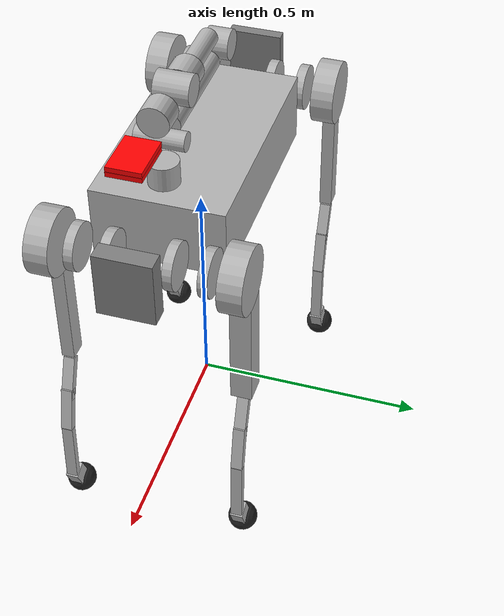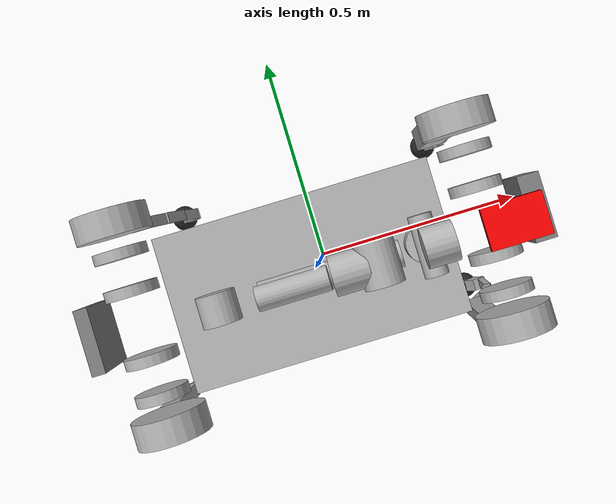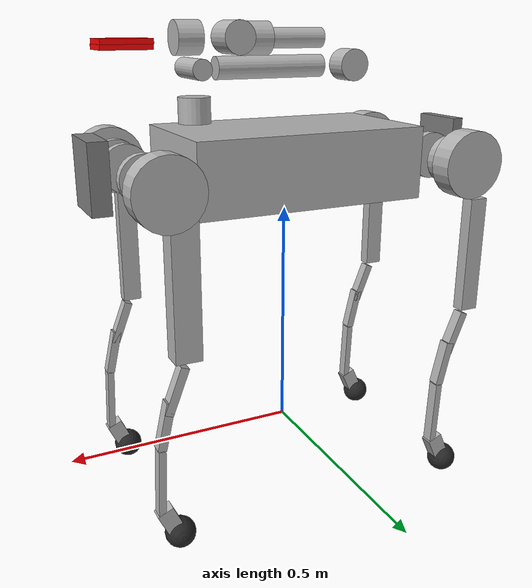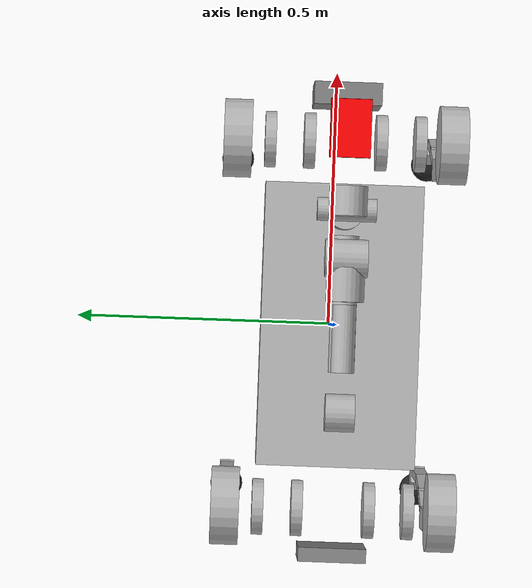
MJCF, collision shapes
<mujoco model="b2z1">
  <compiler angle="radian" meshdir="assets" autolimits="true"/>
  <option impratio="10" />
  <option noslip_iterations="5"> </option>

  <default>
    <default class="b2z1">
      <geom type="mesh"/>
      <joint damping="1" armature="0.1"/>
      <default class="visual">
        <geom contype="0" conaffinity="0" group="2"/>
      </default>
      <default class="collision">
        <geom group="3" mass="0" density="0"/>
      </default>
      <site size="0.001" rgba="0.5 0.5 0.5 0.3" group="4"/>
    </default>
  </default>

  <asset>
    <mesh name="base_link" file="base_link.obj"/>
    <mesh name="logo_left" file="logo_left.obj"/>
    <mesh name="logo_right" file="logo_right.obj"/>
    <mesh name="f_dc_link" file="f_dc_link.obj"/>
    <mesh name="r_dc_link" file="r_dc_link.obj"/>
    <mesh name="fake_imu_link" file="fake_imu_link.STL"/>
    <mesh name="fake_head_Link" file="fake_head_Link.STL"/>
    <mesh name="fake_tail_link" file="fake_tail_link.STL"/>
    <mesh name="FL_hip" file="FL_hip.obj"/>
    <mesh name="FL_thigh" file="FL_thigh.obj"/>
    <mesh name="FL_thigh_protect" file="FL_thigh_protect.obj"/>
    <mesh name="FL_calf" file="FL_calf.obj"/>
    <mesh name="FL_foot" file="FL_foot.obj"/>
    <mesh name="FR_hip" file="FR_hip.obj"/>
    <mesh name="FR_thigh" file="FR_thigh.obj"/>
    <mesh name="FR_thigh_protect" file="FR_thigh_protect.obj"/>
    <mesh name="FR_calf" file="FR_calf.obj"/>
    <mesh name="FR_foot" file="FR_foot.obj"/>
    <mesh name="RL_hip" file="RL_hip.obj"/>
    <mesh name="RL_thigh" file="RL_thigh.obj"/>
    <mesh name="RL_thigh_protect" file="RL_thigh_protect.obj"/>
    <mesh name="RL_calf" file="RL_calf.obj"/>
    <mesh name="RL_foot" file="RL_foot.obj"/>
    <mesh name="RR_hip" file="RR_hip.obj"/>
    <mesh name="RR_thigh" file="RR_thigh.obj"/>
    <mesh name="RR_thigh_protect" file="RR_thigh_protect.obj"/>
    <mesh name="RR_calf" file="RR_calf.obj"/>
    <mesh name="RR_foot" file="RR_foot.obj"/>
    <mesh name="f_oc_link" file="f_oc_link.obj"/>
    <mesh name="r_oc_link" file="r_oc_link.obj"/>

    <mesh name="z1_GripperMover" file="z1_GripperMover.STL" />
    <mesh name="z1_GripperStator" file="z1_GripperStator.STL" />
    <mesh name="z1_Link00" file="z1_Link00.STL"/>
    <mesh name="z1_Link01" file="z1_Link01.STL"/>
    <mesh name="z1_Link02" file="z1_Link02.STL"/>
    <mesh name="z1_Link03" file="z1_Link03.STL"/>
    <mesh name="z1_Link04" file="z1_Link04.STL"/>
    <mesh name="z1_Link05" file="z1_Link05.STL"/>
    <mesh name="z1_Link06" file="z1_Link06.STL"/>
  </asset>
  <worldbody>
    <body name="base_link" pos="0.0 0 0.6" childclass="b2z1">
      <inertial pos="0.000458 0.005261 0.000665" mass="35.86"
                diaginertia="0.27466 1.0618 1.1825" fullinertia="0.27466 1.0618 1.1825 -0.000622 0.00315 -0.00139"/>
      <joint name="floating_base_joint" type="free"/>
      <geom type="mesh" contype="0" conaffinity="0" group="1" density="0" rgba="0.7 0.7 0.7 1" mesh="base_link"/>
      <geom size="0.25 0.14 0.075" type="box" rgba="0.7 0.7 0.7 1" class="collision"/>
      <geom type="mesh" contype="0" conaffinity="0" group="1" density="0" rgba="1 1 1 1" mesh="logo_left"/>
      <geom type="mesh" contype="0" conaffinity="0" group="1" density="0" rgba="1 1 1 1" mesh="logo_right"/>
      <body name="f_dc_link" pos="0.41251 0.024997 0.04765" euler="-2.3562 0 -1.5708">
        <inertial pos="0 0 0" mass="4.19E-15" diaginertia="1.68E-27 1.68E-27 1.68E-27"/>
      </body>
      <body name="r_dc_link" pos="-0.4081 -0.025 0.024861" euler="-2.3557 0 1.5708">
        <inertial pos="0 0 0" mass="4.19E-15" diaginertia="1.68E-27 1.68E-27 1.68E-27"/>
      </body>
      <body name="imu_link" pos="0 -0.02341 0.04927">
        <inertial pos="0 0 0" mass="4.19E-15" diaginertia="1.68E-27 1.68E-27 1.68E-27"/>
      </body>
      <body name="head_Link">
        <inertial pos="0.41 0 0.005" mass="3.6885"
                  diaginertia="0.026455 0.029221 0.010918" fullinertia="0.026455 0.029221 0.010918 3.15E-05 0.00166 -3.27E-05"/>
        <geom type="box" pos="0.41 0 0.005" size="0.02 0.06 0.07" class="collision"/>
        <camera name="head_cam" pos="0.41 0 0.11" xyaxes="0 -1 0 0.5 0 0.866" fovy="60" mode="fixed"/>
      </body>
      <body name="tail_link">
        <inertial pos="-0.37448 0.000488 0.006495" mass="0.795"
                  diaginertia="0.0028118 0.0047506 0.0029154" fullinertia="0.0028118 0.0047506 0.0029154 1.95E-05 -7.87E-06 -1.57E-05"/>
        <geom type="box" pos="-0.405 0 0.005" size="0.0125 0.06 0.07" class="collision"/>
      </body>
      <body name="f_oc_link" pos="0.39079 0 -0.013433" euler="-1.5708 0 -1.5708">
        <inertial pos="0 0 0" mass="4.19E-15" diaginertia="1.68E-27 1.68E-27 1.68E-27"/>
      </body>
      <body name="r_oc_link" pos="-0.38451 0 -0.023249" euler="-1.5708 0 1.5708">
        <inertial pos="0 0 0" mass="4.19E-12" diaginertia="1.68E-22 1.68E-22 1.68E-22"/>
      </body>
      <site name="imu" pos="0 -0.02341 0.04927"/>
      <!-- Front Left Leg -->
      <body name="FL_hip_rotor" pos="0.20205 0.072 0">
          <geom type="cylinder" euler="0 1.5707963267948966 0" size="0.05 0.01" contype="0" conaffinity="0" group="1" density="0" rgba="0.7 0.7 0.7 1"/>
          <inertial pos="0 0 0" mass="0.2734" diaginertia="0.000144463 0.000144463 0.000263053"/>
      </body>
      <body name="FL_hip" pos="0.3285 0.072 0">
        <inertial pos="-0.003841 -0.009068 0" mass="2.673"
                  diaginertia="0.0033188 0.0048743 0.0037087"/>
        <joint name="FL_hip_joint" type="hinge" pos="0 0 0" axis="1 0 0" range="-0.87 0.87"/>
        <geom type="mesh" contype="0" conaffinity="0" group="1" density="0" rgba="0.7 0.7 0.7 1" mesh="FL_hip"/>
        <geom type="cylinder" pos="0 0.12 0" euler="1.5707963267948966 0 0" size="0.07 0.025" rgba="0.7 0.7 0.7 1" class="collision"/>
        <body name="FL_thigh_rotor" pos="0 -0.00798 0">
            <geom type="cylinder" euler="1.5707963267948966 0 0" size="0.05 0.01" contype="0" conaffinity="0" group="1" density="0" rgba="0.7 0.7 0.7 1"/>
            <inertial pos="0 0 0" mass="0.2734" diaginertia="0.000144463 0.000144463 0.000263053"/>
          </body>
        <body name="FL_thigh" pos="0 0.11973 0">
          <inertial pos="-0.006279 -0.032049 -0.057835" mass="4.536"
                    diaginertia="0.062299 0.061399 0.0081997" fullinertia="0.062299 0.061399 0.0081997 0.00087781 -0.0036475 0.0083537"/>
          <joint name="FL_thigh_joint" type="hinge" pos="0 0 0" axis="0 1 0" range="-0.94 4.69"/>
          <geom type="mesh" contype="0" conaffinity="0" group="1" density="0" rgba="0.7 0.7 0.7 1" mesh="FL_thigh"/>
          <geom type="box" pos="-0.025 0 -0.16" euler="0 1.57 0" size="0.16 0.02225 0.027" rgba="0.7 0.7 0.7 1" class="collision"/>
          <geom type="mesh" contype="0" conaffinity="0" group="1" density="0" rgba="0.65 0.68 0.65 1" mesh="FL_thigh_protect"/>

          <body name="FL_calf_rotor" pos="0 -0.05788 0">
              <geom type="cylinder" euler="1.5707963267948966 0 0" size="0.05 0.01" contype="0" conaffinity="0" group="1" density="0" rgba="0.7 0.7 0.7 1"/>
              <inertial pos="0 0 0" mass="0.2734" diaginertia="0.000144463 0.000144463 0.000263053"/>
            </body>
          <body name="FL_calf" pos="0 -8.6984e-05 -0.35">
            <inertial pos="0.012422 0 -0.12499" mass="0.404"
                      diaginertia="0.01143 0.011534 0.000331" fullinertia="0.01143 0.011534 0.000331 0 0.000643 0"/>
            <joint name="FL_calf_joint" type="hinge" pos="0 0 0" axis="0 1 0" range="-2.82 -0.43"/>
            <geom type="mesh" contype="0" conaffinity="0" group="1" density="0" rgba="0.7 0.7 0.7 1" mesh="FL_calf"/>
            <geom type="box" pos="-0.002 0 -0.03" euler="0 1.2 0" size="0.05 0.01225 0.009" rgba="0.7 0.7 0.7 1" class="collision"/>
            <geom type="box" pos="0.022 0 -0.1" euler="0 1.35 0" size="0.05 0.01225 0.009" rgba="0.7 0.7 0.7 1" class="collision"/>
            <geom type="box" pos="0.036 0 -0.225" euler="0 1.53 0" size="0.075 0.01225 0.0075" rgba="0.7 0.7 0.7 1" class="collision"/>
            <geom type="box" pos="0.023 0 -0.31" euler="0 2 0" size="0.025 0.014 0.0175" rgba="0.7 0.7 0.7 1" class="collision"/>
            <geom pos="0 8.6986e-05 0" type="mesh" contype="0" conaffinity="0" group="1" density="0" rgba="0.15 0.15 0.15 1" mesh="FL_foot"/>
            <body name="FL_foot" pos="0 0 -0.35">
              <inertial pos="-0.006511 0 -0.010144" mass="0.126"
                        diaginertia="3.8E-05 4.1E-05 4.2E-05"/>
              <geom type="sphere" euler="1.57 0 0" size="0.032" rgba="0.15 0.15 0.15 1" class="collision" friction="1.0 0.05 0.01" solref="-10000 -100"/>
              <site name="FL_foot_site" type="sphere" pos="0 0 0" size="0.04"/>
            </body>

          </body>
        </body>
      </body>
      <!-- Front Right Leg -->
      <body name="FR_hip_rotor" pos="0.20205 -0.072 0">
          <geom type="cylinder" euler="0 1.5707963267948966 0"  size="0.05 0.01" contype="0" conaffinity="0" group="1" density="0" rgba="0.7 0.7 0.7 1"/>
          <inertial pos="0 0 0" mass="0.2734" diaginertia="0.000144463 0.000144463 0.000263053"/>
      </body>
      <body name="FR_hip" pos="0.3285 -0.072 0">
        <inertial pos="-0.009305 0.010228 0.000264" mass="2.673"
          diaginertia="0.0026431 0.0046728 0.0034208" fullinertia="0.0026431 0.0046728 0.0034208 -0.00019234 -6.76E-06 7.16E-06"/>
        <joint name="FR_hip_joint" type="hinge" pos="0 0 0" axis="1 0 0" range="-0.87 0.87"/>
        <geom type="mesh" contype="0" conaffinity="0" group="1" density="0" rgba="0.7 0.7 0.7 1" mesh="FR_hip"/>
        <geom type="cylinder" pos="0 -0.12 0" euler="1.5707963267948966 0 0" size="0.07 0.025" rgba="0.7 0.7 0.7 1" class="collision"/>
        <body name="FR_thigh_rotor" pos="0 0.00798 0">
            <geom type="cylinder" euler="1.5707963267948966 0 0" size="0.05 0.01" contype="0" conaffinity="0" group="1" density="0" rgba="0.7 0.7 0.7 1"/>
            <inertial pos="0 0 0" mass="0.2734" diaginertia="0.000144463 0.000144463 0.000263053"/>
        </body>
        <body name="FR_thigh" pos="0 -0.11973 0">
          <inertial pos="-0.006279 0.032049 -0.057835" mass="4.536"
                    diaginertia="0.06229908 0.06139927 0.008199745" fullinertia="0.06229908 0.06139927 0.008199745 -0.000877808 -0.003647464 -0.008353671"/>
          <joint name="FR_thigh_joint" type="hinge" pos="0 0 0" axis="0 1 0" range="-0.94 4.69"/>
          <geom type="mesh" contype="0" conaffinity="0" group="1" density="0" rgba="0.7 0.7 0.7 1" mesh="FR_thigh"/>
          <geom type="box" pos="-0.03 0 -0.2" euler="0 1.57 0" size="0.125 0.014 0.02" rgba="0.7 0.7 0.7 1" class="collision"/>
          <geom type="mesh" contype="0" conaffinity="0" group="1" density="0" rgba="0.65 0.68 0.65 1" mesh="FR_thigh_protect"/>
          <body name="FR_calf_rotor" pos="0 0.05788 0">
              <geom type="cylinder" euler="1.5707963267948966 0 0" size="0.05 0.01" contype="0" conaffinity="0" group="1" density="0" rgba="0.7 0.7 0.7 1"/>
              <inertial pos="0 0 0" mass="0.2734" diaginertia="0.000144463 0.000144463 0.000263053"/>
          </body>
          <body name="FR_calf" pos="0 8.6986e-05 -0.35">
            <inertial pos="0.012422 0 -0.12499" mass="0.404"
                      diaginertia="0.01143 0.011534 0.000331" fullinertia="0.01143 0.011534 0.000331 0 0.000643 0"/>
            <joint name="FR_calf_joint" type="hinge" pos="0 0 0" axis="0 1 0" range="-2.82 -0.43"/>
            <geom type="mesh" contype="0" conaffinity="0" group="1" density="0" rgba="0.7 0.7 0.7 1" mesh="FR_calf"/>
            <geom type="box" pos="-0.002 0 -0.03" euler="0 1.2 0" size="0.05 0.01225 0.009" rgba="0.7 0.7 0.7 1" class="collision"/>
            <geom type="box" pos="0.022 0 -0.1" euler="0 1.35 0" size="0.05 0.01225 0.009" rgba="0.7 0.7 0.7 1" class="collision"/>
            <geom type="box" pos="0.036 0 -0.225" euler="0 1.53 0" size="0.075 0.01225 0.0075" rgba="0.7 0.7 0.7 1" class="collision"/>
            <geom type="box" pos="0.023 0 -0.31" euler="0 2 0" size="0.025 0.014 0.0175" rgba="0.7 0.7 0.7 1" class="collision"/>
            <geom pos="0 -8.6986e-05 0" type="mesh" contype="0" conaffinity="0" group="1" density="0" rgba="0.15 0.15 0.15 1" mesh="FR_foot"/>
            <body name="FR_foot" pos="0 0 -0.35">
              <inertial pos="-0.006511 0 -0.010144" mass="0.126"
                        diaginertia="3.8E-05 4.1E-05 4.2E-05"/>
              <geom type="sphere" euler="1.57 0 0" size="0.032" rgba="0.15 0.15 0.15 1" class="collision" friction="1.0 0.05 0.01" solref="-10000 -100"/>
              <site name="FR_foot_site" type="sphere" pos="0 0 0" size="0.04"/>
            </body>
          </body>
        </body>
      </body>
      <!-- Rear Left Leg -->
      <body name="RL_hip_rotor" pos="-0.20205 0.072 0">
          <geom type="cylinder" euler="0 1.5707963267948966 0" size="0.05 0.01" contype="0" conaffinity="0" group="1" density="0" rgba="0.7 0.7 0.7 1"/>
          <inertial pos="0 0 0" mass="0.2734" diaginertia="0.000144463 0.000144463 0.000263053"/>
      </body>
      <body name="RL_hip" pos="-0.3285 0.072 0">
        <inertial pos="0.009305 -0.010228 0.000264" mass="2.673"
                  diaginertia="0.0026431 0.0046728 0.0034208"/>
        <joint name="RL_hip_joint" type="hinge" pos="0 0 0" axis="1 0 0" range="-0.87 0.87"/>
        <geom type="mesh" contype="0" conaffinity="0" group="1" density="0" rgba="0.7 0.7 0.7 1" mesh="RL_hip"/>
        <geom type="cylinder" pos="0 0.12 0" euler="1.5707963267948966 0 0" size="0.07 0.025" rgba="0.7 0.7 0.7 1" class="collision"/>
        <body name="RL_thigh_rotor" pos="0 -0.00798 0">
            <geom type="cylinder" euler="1.5707963267948966 0 0" size="0.05 0.01" contype="0" conaffinity="0" group="1" density="0" rgba="0.7 0.7 0.7 1"/>
            <inertial pos="0 0 0" mass="0.2734" diaginertia="0.000144463 0.000144463 0.000263053"/>
        </body>
        <body name="RL_thigh" pos="0 0.11973 0">
          <inertial pos="-0.006279 -0.032049 -0.057835" mass="4.536"
                    diaginertia="0.06229908 0.06139927 0.008199745" fullinertia="0.06229908 0.06139927 0.008199745 0.000877808 -0.003647464 0.008353671"/>
          <joint name="RL_thigh_joint" type="hinge" pos="0 0 0" axis="0 1 0" range="-0.94 4.69"/>
          <geom type="mesh" contype="0" conaffinity="0" group="1" density="0" rgba="0.7 0.7 0.7 1" mesh="RL_thigh"/>
          <geom type="box" pos="-0.03 0 -0.2" euler="0 1.57 0" size="0.125 0.014 0.02" rgba="0.7 0.7 0.7 1" class="collision"/>
          <geom type="mesh" contype="0" conaffinity="0" group="1" density="0" rgba="0.65 0.68 0.65 1" mesh="RL_thigh_protect"/>
          <body name="RL_calf_rotor" pos="0 -0.05788 0">
              <geom type="cylinder" euler="1.5707963267948966 0 0" size="0.05 0.01" contype="0" conaffinity="0" group="1" density="0" rgba="0.7 0.7 0.7 1"/>
              <inertial pos="0 0 0" mass="0.2734" diaginertia="0.000144463 0.000144463 0.000263053"/>
            </body>
          <body name="RL_calf" pos="0 -8.6984e-05 -0.35">
            <inertial pos="0.012422 0 -0.12499" mass="0.404"
                      diaginertia="0.01143 0.011534 0.000331" fullinertia="0.01143 0.011534 0.000331 0 0.000643 0"/>
            <joint name="RL_calf_joint" type="hinge" pos="0 0 0" axis="0 1 0" range="-2.82 -0.43"/>
            <geom type="mesh" contype="0" conaffinity="0" group="1" density="0" rgba="0.7 0.7 0.7 1" mesh="RL_calf"/>
            <geom type="box" pos="-0.002 0 -0.03" euler="0 1.2 0" size="0.05 0.01225 0.009" rgba="0.7 0.7 0.7 1" class="collision"/>
            <geom type="box" pos="0.022 0 -0.1" euler="0 1.35 0" size="0.05 0.01225 0.009" rgba="0.7 0.7 0.7 1" class="collision"/>
            <geom type="box" pos="0.036 0 -0.225" euler="0 1.53 0" size="0.075 0.01225 0.0075" rgba="0.7 0.7 0.7 1" class="collision"/>
            <geom type="box" pos="0.023 0 -0.31" euler="0 2 0" size="0.025 0.014 0.0175" rgba="0.7 0.7 0.7 1" class="collision"/>
            <geom pos="0 8.6984e-05 0" type="mesh" contype="0" conaffinity="0" group="1" density="0" rgba="0.15 0.15 0.15 1" mesh="RL_foot"/>
            <body name="RL_foot" pos="0 0 -0.35">
              <inertial pos="-0.006511 0 -0.010144" mass="0.126"
                        diaginertia="3.8E-05 4.1E-05 4.2E-05"/>
              <geom type="sphere" euler="1.57 0 0" size="0.032" rgba="0.15 0.15 0.15 1" class="collision" friction="1.0 0.05 0.01" solref="-10000 -100"/>
              <site name="RL_foot_site" type="sphere" pos="0 0 0" size="0.04"/>
            </body>
          </body>
        </body>
      </body>
      <!-- Rear Right Leg -->
      <body name="RR_hip_rotor" pos="-0.20205 -0.072 0">
          <geom type="cylinder" euler="0 1.5707963267948966 0" size="0.05 0.01" contype="0" conaffinity="0" group="1" density="0" rgba="0.7 0.7 0.7 1"/>
          <inertial pos="0 0 0" mass="0.2734" diaginertia="0.000144463 0.000144463 0.000263053"/>
      </body>
      <body name="RR_hip" pos="-0.3285 -0.072 0">
        <inertial pos="0.003841 0.009068 0" mass="2.673"
                  diaginertia="0.0033188 0.0048743 0.0037087"/>
        <joint name="RR_hip_joint" type="hinge" pos="0 0 0" axis="1 0 0" range="-0.87 0.87"/>
        <geom type="mesh" contype="0" conaffinity="0" group="1" density="0" rgba="0.7 0.7 0.7 1" mesh="RR_hip"/>
        <geom type="cylinder" pos="0 -0.12 0" euler="1.5707963267948966 0 0" size="0.07 0.025" rgba="0.7 0.7 0.7 1" class="collision"/>
        <body name="RR_thigh_rotor" pos="0 0.00798 0">
            <geom type="cylinder" euler="1.5707963267948966 0 0" size="0.05 0.01" contype="0" conaffinity="0" group="1" density="0" rgba="0.7 0.7 0.7 1"/>
            <inertial pos="0 0 0" mass="0.2734" diaginertia="0.000144463 0.000144463 0.000263053"/>
          </body>
        <body name="RR_thigh" pos="0 -0.11973 0">
          <inertial pos="-0.006279 0.032049 -0.057835" mass="4.536"
                    diaginertia="0.062299 0.061399 0.0081997" fullinertia="0.062299 0.061399 0.0081997 -0.00087781 -0.0036475 -0.0083537"/>
          <joint name="RR_thigh_joint" type="hinge" pos="0 0 0" axis="0 1 0" range="-0.94 4.69"/>
          <geom type="mesh" contype="0" conaffinity="0" group="1" density="0" rgba="0.7 0.7 0.7 1" mesh="RR_thigh"/>
          <geom type="box" pos="-0.03 0 -0.2" euler="0 1.57 0" size="0.125 0.014 0.02" rgba="0.7 0.7 0.7 1" class="collision"/>
          <geom type="mesh" contype="0" conaffinity="0" group="1" density="0" rgba="0.65 0.68 0.65 1" mesh="RR_thigh_protect"/>
          <body name="RR_calf_rotor" pos="0 0.05788 0">
              <geom type="cylinder" euler="1.5707963267948966 0 0" size="0.05 0.01" contype="0" conaffinity="0" group="1" density="0" rgba="0.7 0.7 0.7 1"/>
              <inertial pos="0 0 0" mass="0.2734" diaginertia="0.000144463 0.000144463 0.000263053"/>
            </body>
          <body name="RR_calf" pos="0 8.6986e-05 -0.35">
            <inertial pos="0.012422 0 -0.12499" mass="0.404"
                      diaginertia="0.01143 0.011534 0.000331" fullinertia="0.01143 0.011534 0.000331 0 0.000643 0"/>
            <joint name="RR_calf_joint" type="hinge" pos="0 0 0" axis="0 1 0" range="-2.82 -0.43"/>
            <geom type="mesh" contype="0" conaffinity="0" group="1" density="0" rgba="0.7 0.7 0.7 1" mesh="RR_calf"/>
            <geom type="box" pos="-0.002 0 -0.03" euler="0 1.2 0" size="0.05 0.01225 0.009" rgba="0.7 0.7 0.7 1" class="collision"/>
            <geom type="box" pos="0.022 0 -0.1" euler="0 1.35 0" size="0.05 0.01225 0.009" rgba="0.7 0.7 0.7 1" class="collision"/>
            <geom type="box" pos="0.036 0 -0.225" euler="0 1.53 0" size="0.075 0.01225 0.0075" rgba="0.7 0.7 0.7 1" class="collision"/>
            <geom type="box" pos="0.023 0 -0.31" euler="0 2 0" size="0.025 0.014 0.0175" rgba="0.7 0.7 0.7 1" class="collision"/>
            <geom pos="0 -8.6986e-05 0" type="mesh" contype="0" conaffinity="0" group="1" density="0" rgba="0.15 0.15 0.15 1" mesh="RR_foot"/>
            <body name="RR_foot" pos="0 0 -0.35">
              <inertial pos="-0.006511 0 -0.010144" mass="0.126"
                        diaginertia="3.8E-05 4.1E-05 4.2E-05"/>
              <geom type="sphere" euler="1.57 0 0" size="0.032" rgba="0.15 0.15 0.15 1" class="collision" friction="1.0 0.05 0.01" solref="-10000 -100"/>
              <site name="RR_foot_site" type="sphere" pos="0 0 0" size="0.04"/>
            </body>
          </body>
        </body>
      </body>
      <body name="z1_Link00" pos="0.2 0 0.09">
        <inertial pos="-0.00334984 -0.00013615 0.02495843" mass="0.47247481" diaginertia="0.00037937 0.00041521 0.00053066"/>
        <geom type="mesh" mesh="z1_Link00" contype="0" conaffinity="0" group="1" density="0" rgba="0.7 0.7 0.7 1"/>
        <geom type="cylinder" size="0.0325 0.0255" pos="0 0 0.0255" rgba="0.7 0.7 0.7 0.3" class="collision"/>

        <body name="z1_Link01" pos="0 0 0.0585">
          <inertial pos="2.47e-06 -0.00025198 0.02317169" mass="0.67332551" diaginertia="0.00128328 0.00071931 0.00083936"/>
          <joint name="z1_joint1" type="hinge" axis="0 0 1" range="-0.2 0.2" damping="1.0"/>
          <geom type="mesh" mesh="z1_Link01" contype="0" conaffinity="0" group="1" density="0" rgba="0.7 0.7 0.7 1"/>

          <body name="z1_Link02" pos="0 0 0.045">
            <inertial pos="-0.11012601 0.00240029 0.00158266" mass="1.19132258" diaginertia="0.00102138 0.02429457 0.02466114"/>
            <joint name="z1_joint2" type="hinge" axis="0 1 0" range="0.0 3.14" damping="2.0"/>
            <geom type="mesh" mesh="z1_Link02" contype="0" conaffinity="0" group="1" density="0" rgba="0.7 0.7 0.7 1"/>
            <geom type="cylinder" size="0.02 0.051" euler="1.5707963267948966 0 0" rgba="0.7 0.7 0.7 1" class="collision"/>
            <geom type="cylinder" size="0.0225 0.1175" euler="0 1.5707963267948966 0" pos="-0.1625 0 0" rgba="0.7 0.7 0.7 1" class="collision"/>
            <geom type="cylinder" size="0.0325 0.0255" euler="1.5707963267948966 0 0" pos="-0.35 0 0" rgba="0.7 0.7 0.7 1" class="collision"/>

            <body name="z1_Link03" pos="-0.35 0 0">
              <inertial pos="0.10609208 -0.00541815 0.03476383" mass="0.83940874" diaginertia="0.00108061 0.00954238 0.00886621"/>
              <joint name="z1_joint3" type="hinge" axis="0 1 0" range="-4.78 0.0" damping="1.0"/>
              <geom type="mesh" mesh="z1_Link03" contype="0" conaffinity="0" group="1" density="0" rgba="0.7 0.7 0.7 1"/>
              <geom type="cylinder" size="0.02 0.058" euler="0 1.5707963267948966 0" pos="0.128 0 0.055" rgba="0.7 0.7 0.7 1" class="collision"/>
              <geom type="cylinder" size="0.0325 0.0295" euler="0 1.5707963267948966 0" pos="0.2205 0 0.055" rgba="0.7 0.7 0.7 1" class="collision"/>

              <body name="z1_Link04" pos="0.218 0 0.057">
                <inertial pos="0.04366681 0.00364738 -0.00170192" mass="0.56404563" diaginertia="0.00031576 0.00092996 0.00097912"/>
                <joint name="z1_joint4" type="hinge" axis="0 1 0" range="-1.74 1.57"/>
                <geom type="mesh" mesh="z1_Link04" contype="0" conaffinity="0" group="1" density="0" rgba="0.7 0.7 0.7 1"/>
                <geom type="cylinder" size="0.0325 0.0365" euler="1.5707963267948966 0 0" pos="0.0472 0 0" rgba="0.7 0.7 0.7 1" class="collision"/>

                <body name="z1_Link05" pos="0.07 0.0 0.0">
                  <inertial pos="0.03121533 0.0 0.00646316" mass="0.38938492" diaginertia="0.00017605 0.00055896 0.0005386"/>
                  <joint name="z1_joint5" type="hinge" axis="0 0 1" range="-1.72 1.72"/>
                  <geom type="mesh" mesh="z1_Link05" contype="0" conaffinity="0" group="1" density="0" rgba="0.7 0.7 0.7 1"/>

                  <body name="z1_Link06" pos="0.0492 0.0 0.0">
                    <inertial pos="0.0241569 -0.00017355 -0.00143876" mass="0.28875807" diaginertia="0.00018328 0.0001475 0.0001468"/>
                    <joint name="z1_joint6" type="hinge" axis="1 0 0" range="-2.79 2.79"/>
                    <geom type="mesh" mesh="z1_Link06" contype="0" conaffinity="0" group="1" density="0" rgba="0.7 0.7 0.7 1"/>
                    <geom type="cylinder" size="0.0325 0.0255" euler="0 1.5707963267948966 0" pos="0.0255 0 0" rgba="0.7 0.7 0.7 1" class="collision"/>

                    <!-- Gripper -->
                    <body name="z1_GripperStator" pos="0.051 0.0 0.0">
                      <inertial pos="0.04764427 -0.00035819 -0.00249162" mass="0.52603655" diaginertia="0.00038683 0.00068614 0.00066293"/>
                      <geom type="mesh" mesh="z1_GripperStator"
                            contype="0" conaffinity="0"
                            />
                      <geom name="z1_gripper_stator_colgeom" type="box" size="0.05 0.035 0.005" pos="0.1 0.0 -0.015"
                        rgba="1 0 0 0.3"
                        contype="1" conaffinity="1" group="3"
                        />
                      <!-- cam rotate 30 degree -->
                      <camera name="wrist_cam" pos="0. 0.15 0.0" xyaxes="0 0 1 0.5 0.866 0" fovy="60" mode="fixed"/>

                      <!-- quat="0.707107 0 0 0.707107" -->
                      <!-- rpy="1.5707963267948966 0 0" -->
                      <body name="z1_GripperMover" pos="0.049 0.0 0">
                        <inertial pos="0.01320633 0.00476708 0.00380534" mass="0.27621302" diaginertia="0.00017716 0.00026787 0.00035728"/>
                        <joint name="z1_jointGripper" type="hinge" axis="0 1 0" range="-1.57 0.0"/>
                        <geom type="mesh" mesh="z1_GripperMover"
                              contype="0" conaffinity="0"
                              />
                        <geom name="z1_gripper_mover_colgeom" type="box" size="0.05 0.035 0.005" pos="0.05 0.0 -0.005"
                          rgba="1 0 0 0.3"
                          contype="1" conaffinity="1" group="3"
                          />
                        <!-- quat="0.707107 0 0 0.707107"   -->
                        <!-- rpy="1.5707963267948966 0 0" -->
                      </body>
                       <!-- EE frame -->
                      <body name="ee_gripper_link" pos="0.135 0 0">
                        <inertial pos="0 0 0" mass="0.001" diaginertia="0.001 0.001 0.001"/>
                        <site name="end_effector" pos="0 0 0" size="0.01"/>
                      </body>
                    </body>
                    <!-- Gripper End -->
                  </body>
                </body>
              </body>
            </body>
          </body>
        </body>
      </body>
      <!-- z1 End -->
    </body>
  </worldbody>

  <actuator>
    <motor class="b2z1" ctrlrange="-200 200"  name="FL_hip" joint="FL_hip_joint"/>
    <motor class="b2z1" ctrlrange="-200 200"  name="FL_thigh" joint="FL_thigh_joint"/>
    <motor class="b2z1" ctrlrange="-300 300" name="FL_calf" joint="FL_calf_joint"/>
    <motor class="b2z1" ctrlrange="-200 200"  name="FR_hip" joint="FR_hip_joint"/>
    <motor class="b2z1" ctrlrange="-200 200"  name="FR_thigh" joint="FR_thigh_joint"/>
    <motor class="b2z1" ctrlrange="-300 300"  name="FR_calf" joint="FR_calf_joint"/>
    <motor class="b2z1" ctrlrange="-200 200"  name="RL_hip" joint="RL_hip_joint"/>
    <motor class="b2z1" ctrlrange="-200 200"  name="RL_thigh" joint="RL_thigh_joint"/>
    <motor class="b2z1" ctrlrange="-300 300" name="RL_calf" joint="RL_calf_joint"/>
    <motor class="b2z1" ctrlrange="-200 200"  name="RR_hip" joint="RR_hip_joint"/>
    <motor class="b2z1" ctrlrange="-200 200"  name="RR_thigh" joint="RR_thigh_joint"/>
    <motor class="b2z1" ctrlrange="-300 300" name="RR_calf" joint="RR_calf_joint"/>

    <position class="b2z1" name="z1_motor1" joint="z1_joint1" kp="800" kv="40" />
    <position class="b2z1" name="z1_motor2" joint="z1_joint2" kp="800" kv="40" />
    <position class="b2z1" name="z1_motor3" joint="z1_joint3" kp="800" kv="40" />
    <position class="b2z1" name="z1_motor4" joint="z1_joint4" kp="800" kv="40" />
    <position class="b2z1" name="z1_motor5" joint="z1_joint5" kp="800" kv="40" />
    <position class="b2z1" name="z1_motor6" joint="z1_joint6" kp="800" kv="40" />
    <position class="b2z1" name="z1_gripper_motor" joint="z1_jointGripper" kp="800" kv="40"/>
  </actuator>

  <sensor>
    <jointpos name="FR_hip_pos" joint="FR_hip_joint" />
    <jointpos name="FR_thigh_pos" joint="FR_thigh_joint" />
    <jointpos name="FR_calf_pos" joint="FR_calf_joint" />
    <jointpos name="FL_hip_pos" joint="FL_hip_joint" />
    <jointpos name="FL_thigh_pos" joint="FL_thigh_joint" />
    <jointpos name="FL_calf_pos" joint="FL_calf_joint" />
    <jointpos name="RR_hip_pos" joint="RR_hip_joint" />
    <jointpos name="RR_thigh_pos" joint="RR_thigh_joint" />
    <jointpos name="RR_calf_pos" joint="RR_calf_joint" />
    <jointpos name="RL_hip_pos" joint="RL_hip_joint" />
    <jointpos name="RL_thigh_pos" joint="RL_thigh_joint" />
    <jointpos name="RL_calf_pos" joint="RL_calf_joint" />
    <jointpos name="z1_joint1_pos" joint="z1_joint1" />
    <jointpos name="z1_joint2_pos" joint="z1_joint2" />
    <jointpos name="z1_joint3_pos" joint="z1_joint3" />
    <jointpos name="z1_joint4_pos" joint="z1_joint4" />
    <jointpos name="z1_joint5_pos" joint="z1_joint5" />
    <jointpos name="z1_joint6_pos" joint="z1_joint6" />
    <jointpos name="z1_jointGripper_pos" joint="z1_jointGripper" />

    <jointvel name="FR_hip_vel" joint="FR_hip_joint" />
    <jointvel name="FR_thigh_vel" joint="FR_thigh_joint" />
    <jointvel name="FR_calf_vel" joint="FR_calf_joint" />
    <jointvel name="FL_hip_vel" joint="FL_hip_joint" />
    <jointvel name="FL_thigh_vel" joint="FL_thigh_joint" />
    <jointvel name="FL_calf_vel" joint="FL_calf_joint" />
    <jointvel name="RR_hip_vel" joint="RR_hip_joint" />
    <jointvel name="RR_thigh_vel" joint="RR_thigh_joint" />
    <jointvel name="RR_calf_vel" joint="RR_calf_joint" />
    <jointvel name="RL_hip_vel" joint="RL_hip_joint" />
    <jointvel name="RL_thigh_vel" joint="RL_thigh_joint" />
    <jointvel name="RL_calf_vel" joint="RL_calf_joint" />
    <jointvel name="z1_joint1_vel" joint="z1_joint1" />
    <jointvel name="z1_joint2_vel" joint="z1_joint2" />
    <jointvel name="z1_joint3_vel" joint="z1_joint3" />
    <jointvel name="z1_joint4_vel" joint="z1_joint4" />
    <jointvel name="z1_joint5_vel" joint="z1_joint5" />
    <jointvel name="z1_joint6_vel" joint="z1_joint6" />
    <jointvel name="z1_jointGripper_vel" joint="z1_jointGripper" />

    <jointactuatorfrc name="FR_hip_torque" joint="FR_hip_joint" noise="0.01" />
    <jointactuatorfrc name="FR_thigh_torque" joint="FR_thigh_joint" noise="0.01" />
    <jointactuatorfrc name="FR_calf_torque" joint="FR_calf_joint" noise="0.01" />
    <jointactuatorfrc name="FL_hip_torque" joint="FL_hip_joint" noise="0.01" />
    <jointactuatorfrc name="FL_thigh_torque" joint="FL_thigh_joint" noise="0.01" />
    <jointactuatorfrc name="FL_calf_torque" joint="FL_calf_joint" noise="0.01" />
    <jointactuatorfrc name="RR_hip_torque" joint="RR_hip_joint" noise="0.01" />
    <jointactuatorfrc name="RR_thigh_torque" joint="RR_thigh_joint" noise="0.01" />
    <jointactuatorfrc name="RR_calf_torque" joint="RR_calf_joint" noise="0.01" />
    <jointactuatorfrc name="RL_hip_torque" joint="RL_hip_joint" noise="0.01" />
    <jointactuatorfrc name="RL_thigh_torque" joint="RL_thigh_joint" noise="0.01" />
    <jointactuatorfrc name="RL_calf_torque" joint="RL_calf_joint" noise="0.01" />
    <jointactuatorfrc name="z1_joint1_torque" joint="z1_joint1" noise="0.01" />
    <jointactuatorfrc name="z1_joint2_torque" joint="z1_joint2" noise="0.01" />
    <jointactuatorfrc name="z1_joint3_torque" joint="z1_joint3" noise="0.01" />
    <jointactuatorfrc name="z1_joint4_torque" joint="z1_joint4" noise="0.01" />
    <jointactuatorfrc name="z1_joint5_torque" joint="z1_joint5" noise="0.01" />
    <jointactuatorfrc name="z1_joint6_torque" joint="z1_joint6" noise="0.01" />
    <jointactuatorfrc name="z1_jointGripper_torque" joint="z1_jointGripper" noise="0.01" />

    <touch name="FL_foot_force" site="FL_foot_site"/>
    <touch name="FR_foot_force" site="FR_foot_site"/>
    <touch name="RL_foot_force" site="RL_foot_site"/>
    <touch name="RR_foot_force" site="RR_foot_site"/>

    <framequat name="imu_quat" objtype="site" objname="imu" />
    <gyro name="imu_gyro" site="imu" />
    <accelerometer name="imu_acc" site="imu" />

    <framepos name="frame_pos" objtype="site" objname="imu" />
    <framelinvel name="frame_vel" objtype="site" objname="imu" />
  </sensor>

</mujoco>
